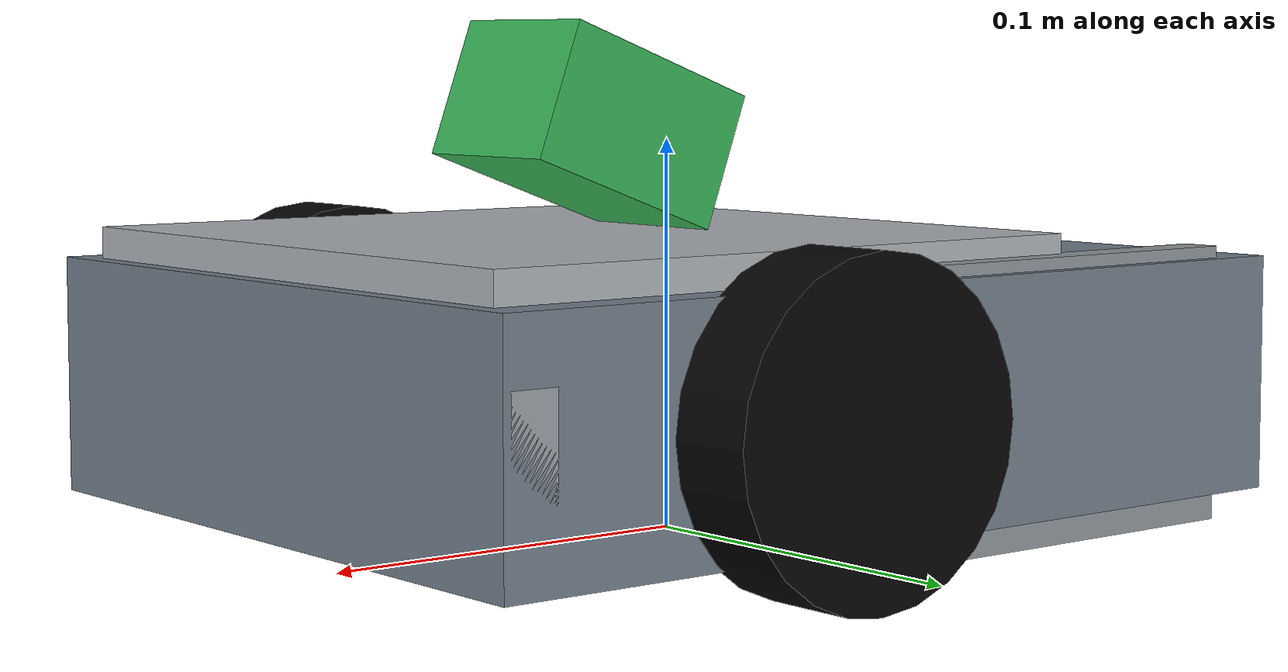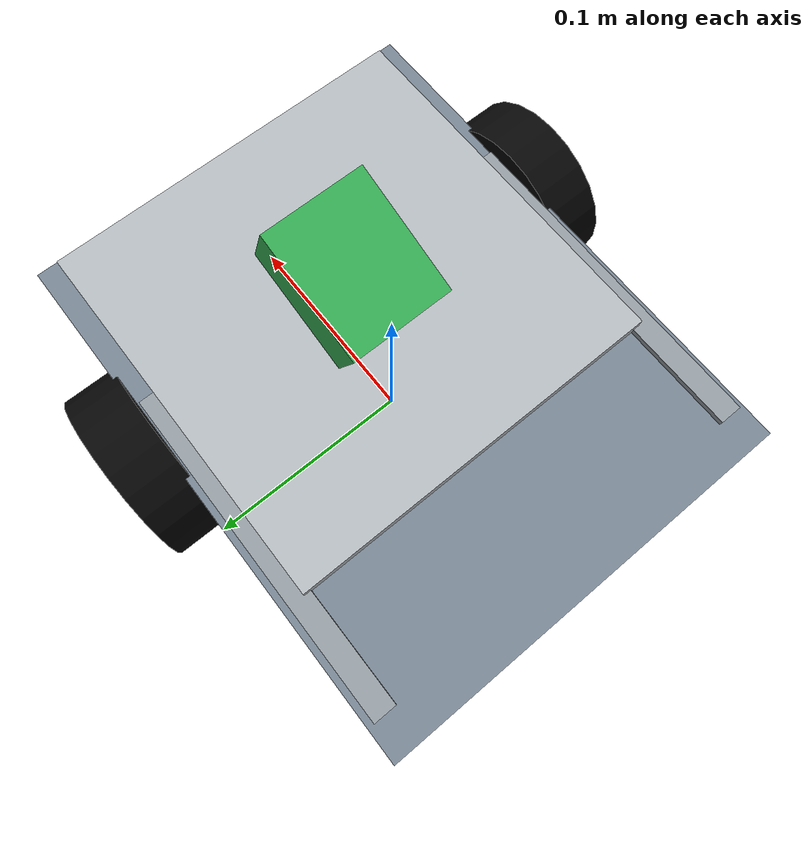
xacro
<?xml version="1.0"?>
<robot xmlns:xacro="http://www.ros.org/wiki/xacro" name="footbot">
  <xacro:arg name="cmd_vel_topic" default="/cmd_vel"/>
  <xacro:arg name="camera_image_topic" default="/camera/image_raw"/>
  <xacro:arg name="camera_info_topic" default="/camera/camera_info"/>
  <xacro:arg name="camera_frame_id" default="camera_optical_frame"/>

  <xacro:property name="base_length" value="0.24"/>
  <xacro:property name="base_width" value="0.19"/>
  <xacro:property name="base_height" value="0.06"/>
  <xacro:property name="base_mass" value="0.90"/>

  <xacro:property name="wheel_radius" value="0.040"/>
  <xacro:property name="wheel_thickness" value="0.024"/>
  <xacro:property name="wheel_mass" value="0.06"/>
  <xacro:property name="wheel_x" value="0.035"/>
  <xacro:property name="wheel_y" value="0.105"/>
  <xacro:property name="wheel_z_from_base" value="0.000"/>

  <xacro:property name="camera_length" value="0.055"/>
  <xacro:property name="camera_width" value="0.045"/>
  <xacro:property name="camera_height" value="0.035"/>
  <xacro:property name="camera_mass" value="0.02"/>
  <xacro:property name="camera_optical_frame_mass" value="0.001"/>

  <xacro:property name="caster_radius" value="0.010"/>
  <xacro:property name="caster_mass" value="0.01"/>
  <xacro:property name="caster_x" value="-0.095"/>
  <xacro:property name="caster_z_from_base" value="-0.030"/>

  <xacro:macro name="box_inertial" params="mass x y z">
    <inertial>
      <origin xyz="0 0 0" rpy="0 0 0"/>
      <mass value="${mass}"/>
      <inertia
        ixx="${mass / 12.0 * (y * y + z * z)}"
        ixy="0.0"
        ixz="0.0"
        iyy="${mass / 12.0 * (x * x + z * z)}"
        iyz="0.0"
        izz="${mass / 12.0 * (x * x + y * y)}"/>
    </inertial>
  </xacro:macro>

  <xacro:macro name="wheel_inertial" params="mass radius thickness">
    <inertial>
      <origin xyz="0 0 0" rpy="0 0 0"/>
      <mass value="${mass}"/>
      <inertia
        ixx="${mass / 12.0 * (3.0 * radius * radius + thickness * thickness)}"
        ixy="0.0"
        ixz="0.0"
        iyy="${mass / 2.0 * radius * radius}"
        iyz="0.0"
        izz="${mass / 12.0 * (3.0 * radius * radius + thickness * thickness)}"/>
    </inertial>
  </xacro:macro>

  <xacro:macro name="sphere_inertial" params="mass radius">
    <inertial>
      <origin xyz="0 0 0" rpy="0 0 0"/>
      <mass value="${mass}"/>
      <inertia
        ixx="${2.0 / 5.0 * mass * radius * radius}"
        ixy="0.0"
        ixz="0.0"
        iyy="${2.0 / 5.0 * mass * radius * radius}"
        iyz="0.0"
        izz="${2.0 / 5.0 * mass * radius * radius}"/>
    </inertial>
  </xacro:macro>

  <link name="base_footprint"/>

  <joint name="base_footprint_joint" type="fixed">
    <parent link="base_footprint"/>
    <child link="base_link"/>
    <origin xyz="0 0 ${wheel_radius}" rpy="0 0 0"/>
  </joint>

  <link name="base_link">
    <visual>
      <origin xyz="0 0 0" rpy="0 0 0"/>
      <geometry>
        <box size="${base_length} ${base_width} ${base_height}"/>
      </geometry>
      <material name="footbot_blue">
        <color rgba="0.45 0.50 0.55 1.0"/>
      </material>
    </visual>
    <visual>
      <origin xyz="0.030 0 ${base_height / 2.0 + 0.004}" rpy="0 0 0"/>
      <geometry>
        <box size="0.170 0.170 0.008"/>
      </geometry>
      <material name="top_plate_gray">
        <color rgba="0.68 0.70 0.72 1.0"/>
      </material>
    </visual>
    <visual>
      <origin xyz="${base_length / 2.0 - 0.008} 0 -0.006" rpy="0 0 0"/>
      <geometry>
        <box size="0.012 ${base_width} 0.040"/>
      </geometry>
      <material name="front_panel_gray">
        <color rgba="0.60 0.63 0.65 1.0"/>
      </material>
    </visual>
    <visual>
      <origin xyz="-0.030 ${base_width / 2.0 - 0.008} -0.002" rpy="0 0 0"/>
      <geometry>
        <box size="0.150 0.010 0.070"/>
      </geometry>
      <material name="side_panel_gray">
        <color rgba="0.56 0.59 0.61 1.0"/>
      </material>
    </visual>
    <visual>
      <origin xyz="-0.030 -${base_width / 2.0 - 0.008} -0.002" rpy="0 0 0"/>
      <geometry>
        <box size="0.150 0.010 0.070"/>
      </geometry>
      <material name="side_panel_gray"/>
    </visual>
    <visual>
      <origin xyz="-0.080 0 -0.004" rpy="0 0 0"/>
      <geometry>
        <box size="0.055 0.120 0.032"/>
      </geometry>
      <material name="rear_support_gray">
        <color rgba="0.50 0.53 0.55 1.0"/>
      </material>
    </visual>
    <collision>
      <origin xyz="0 0 0" rpy="0 0 0"/>
      <geometry>
        <box size="${base_length} ${base_width} ${base_height}"/>
      </geometry>
    </collision>
    <xacro:box_inertial mass="${base_mass}" x="${base_length}" y="${base_width}" z="${base_height}"/>
  </link>

  <joint name="left_wheel_joint" type="continuous">
    <parent link="base_link"/>
    <child link="left_wheel_link"/>
    <origin xyz="${wheel_x} ${wheel_y} ${wheel_z_from_base}" rpy="0 0 0"/>
    <axis xyz="0 1 0"/>
  </joint>

  <link name="left_wheel_link">
    <visual>
      <origin xyz="0 0 0" rpy="1.57079632679 0 0"/>
      <geometry>
        <cylinder radius="${wheel_radius}" length="${wheel_thickness}"/>
      </geometry>
      <material name="wheel_black">
        <color rgba="0.02 0.02 0.02 1.0"/>
      </material>
    </visual>
    <collision>
      <origin xyz="0 0 0" rpy="1.57079632679 0 0"/>
      <geometry>
        <cylinder radius="${wheel_radius}" length="${wheel_thickness}"/>
      </geometry>
    </collision>
    <xacro:wheel_inertial mass="${wheel_mass}" radius="${wheel_radius}" thickness="${wheel_thickness}"/>
  </link>

  <joint name="right_wheel_joint" type="continuous">
    <parent link="base_link"/>
    <child link="right_wheel_link"/>
    <origin xyz="${wheel_x} -${wheel_y} ${wheel_z_from_base}" rpy="0 0 0"/>
    <axis xyz="0 1 0"/>
  </joint>

  <link name="right_wheel_link">
    <visual>
      <origin xyz="0 0 0" rpy="1.57079632679 0 0"/>
      <geometry>
        <cylinder radius="${wheel_radius}" length="${wheel_thickness}"/>
      </geometry>
      <material name="wheel_black"/>
    </visual>
    <collision>
      <origin xyz="0 0 0" rpy="1.57079632679 0 0"/>
      <geometry>
        <cylinder radius="${wheel_radius}" length="${wheel_thickness}"/>
      </geometry>
    </collision>
    <xacro:wheel_inertial mass="${wheel_mass}" radius="${wheel_radius}" thickness="${wheel_thickness}"/>
  </link>

  <joint name="camera_joint" type="fixed">
    <parent link="base_link"/>
    <child link="camera_link"/>
    <origin xyz="0.025 0 ${base_height / 2.0 + 0.034}" rpy="0 0 0"/>
  </joint>

  <link name="camera_link">
    <visual>
      <origin xyz="0 0 0" rpy="0 -0.35 0"/>
      <geometry>
        <box size="${camera_length} ${camera_width} ${camera_height}"/>
      </geometry>
      <material name="camera_green">
        <color rgba="0.22 0.70 0.34 1.0"/>
      </material>
    </visual>
    <visual>
      <origin xyz="0.018 0 -0.002" rpy="0 -0.35 0"/>
      <geometry>
        <box size="0.020 0.032 0.018"/>
      </geometry>
      <material name="camera_lens">
        <color rgba="0.04 0.05 0.05 1.0"/>
      </material>
    </visual>
    <collision>
      <origin xyz="0 0 0" rpy="0 0 0"/>
      <geometry>
        <box size="${camera_length} ${camera_width} ${camera_height}"/>
      </geometry>
    </collision>
    <xacro:box_inertial mass="${camera_mass}" x="${camera_length}" y="${camera_width}" z="${camera_height}"/>
  </link>

  <joint name="camera_optical_joint" type="fixed">
    <parent link="camera_link"/>
    <child link="camera_optical_frame"/>
    <origin xyz="${camera_length / 2.0} 0 0" rpy="-1.57079632679 0 -1.57079632679"/>
  </joint>

  <link name="camera_optical_frame">
    <xacro:box_inertial
      mass="${camera_optical_frame_mass}"
      x="0.001"
      y="0.001"
      z="0.001"/>
  </link>

  <joint name="caster_joint" type="fixed">
    <parent link="base_link"/>
    <child link="caster_link"/>
    <origin xyz="${caster_x} 0 ${caster_z_from_base}" rpy="0 0 0"/>
  </joint>

  <link name="caster_link">
    <visual>
      <origin xyz="0 0 0" rpy="0 0 0"/>
      <geometry>
        <sphere radius="${caster_radius}"/>
      </geometry>
      <material name="caster_gray">
        <color rgba="0.45 0.45 0.45 1.0"/>
      </material>
    </visual>
    <collision>
      <origin xyz="0 0 0" rpy="0 0 0"/>
      <geometry>
        <sphere radius="${caster_radius}"/>
      </geometry>
    </collision>
    <xacro:sphere_inertial mass="${caster_mass}" radius="${caster_radius}"/>
  </link>

  <gazebo reference="camera_link">
    <sensor name="footbot_camera" type="camera">
      <always_on>true</always_on>
      <update_rate>15</update_rate>
      <visualize>true</visualize>
      <topic>$(arg camera_image_topic)</topic>
      <camera name="footbot_camera">
        <camera_info_topic>$(arg camera_info_topic)</camera_info_topic>
        <optical_frame_id>$(arg camera_frame_id)</optical_frame_id>
        <horizontal_fov>1.047</horizontal_fov>
        <image>
          <width>640</width>
          <height>480</height>
          <format>R8G8B8</format>
        </image>
        <clip>
          <near>0.05</near>
          <far>10.0</far>
        </clip>
        <noise>
          <type>gaussian</type>
          <mean>0.0</mean>
          <stddev>0.0</stddev>
        </noise>
      </camera>
    </sensor>
  </gazebo>

  <gazebo>
    <plugin
      filename="ignition-gazebo-diff-drive-system"
      name="ignition::gazebo::systems::DiffDrive">
      <left_joint>left_wheel_joint</left_joint>
      <right_joint>right_wheel_joint</right_joint>
      <wheel_separation>${2.0 * wheel_y}</wheel_separation>
      <wheel_radius>${wheel_radius}</wheel_radius>
      <odom_publish_frequency>20</odom_publish_frequency>
      <topic>$(arg cmd_vel_topic)</topic>
      <max_linear_velocity>0.30</max_linear_velocity>
      <min_linear_velocity>-0.30</min_linear_velocity>
      <max_angular_velocity>1.5</max_angular_velocity>
      <min_angular_velocity>-1.5</min_angular_velocity>
      <max_linear_acceleration>0.5</max_linear_acceleration>
      <min_linear_acceleration>-0.5</min_linear_acceleration>
      <max_angular_acceleration>2.0</max_angular_acceleration>
      <min_angular_acceleration>-2.0</min_angular_acceleration>
    </plugin>
  </gazebo>
</robot>
